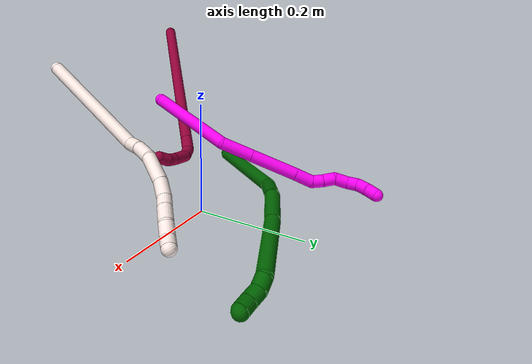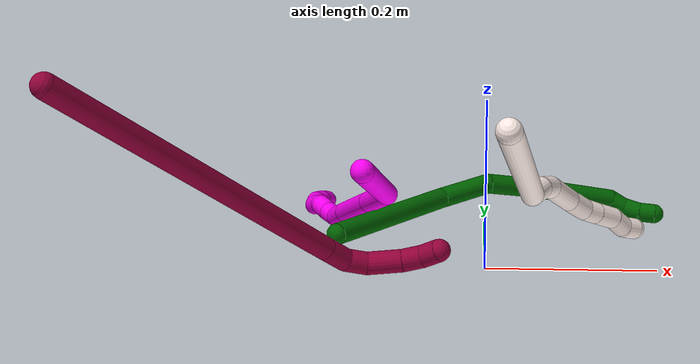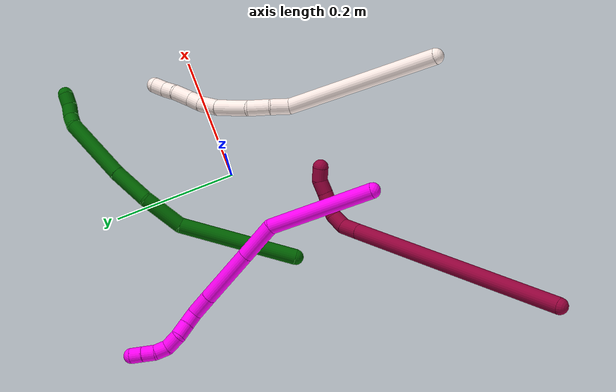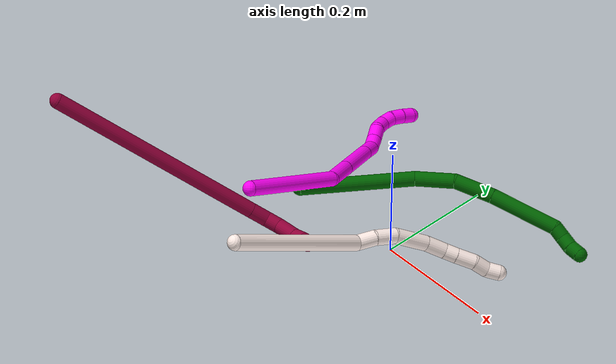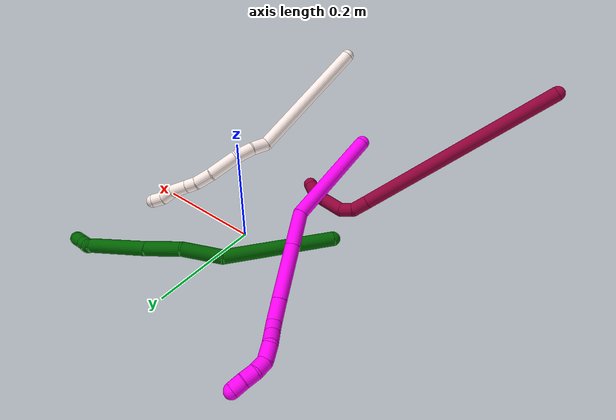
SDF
<sdf version="1.7">
 <world name="default">
  <model name="6">
   <static>0</static>
   <link name="6">
    <collision name="collision-cylinder-e_1_1_4">
     <pose>-0.006357 0.012702 -0.093792 -3.00698 -0.067062 0.923484</pose>
     <geometry><cylinder><radius>0.0125</radius><length>0.189724</length></cylinder></geometry>
     <surface>
      <friction><ode><mu>1.16</mu><mu2>1.16</mu2><slip1>0</slip1><slip2>0</slip2></ode></friction>
      <contact><ode><kp>1e+06</kp><kd>1</kd><max_vel>0</max_vel><min_depth>0.001</min_depth></ode></contact>
     </surface>
    </collision>
    <visual name="visual-cylinder-e_1_1_4">
     <pose>-0.006357 0.012702 -0.093792 -3.00698 -0.067062 0.923484</pose>
     <geometry><cylinder><radius>0.0125</radius><length>0.189724</length></cylinder></geometry>
     <material><ambient>0 0.392157 0.003922 1</ambient></material>
    </visual>
    <collision name="collision-cylinder-e_2_4_5">
     <pose>-0.009545 0.04176 -0.217629 -2.64308 0.092367 -0.359213</pose>
     <geometry><cylinder><radius>0.0125</radius><length>0.068706</length></cylinder></geometry>
     <surface>
      <friction><ode><mu>1.16</mu><mu2>1.16</mu2><slip1>0</slip1><slip2>0</slip2></ode></friction>
      <contact><ode><kp>1e+06</kp><kd>1</kd><max_vel>0</max_vel><min_depth>0.001</min_depth></ode></contact>
     </surface>
    </collision>
    <visual name="visual-cylinder-e_2_4_5">
     <pose>-0.009545 0.04176 -0.217629 -2.64308 0.092367 -0.359213</pose>
     <geometry><cylinder><radius>0.0125</radius><length>0.068706</length></cylinder></geometry>
     <material><ambient>0 0.392157 0.003922 1</ambient></material>
    </visual>
    <collision name="collision-cylinder-e_3_5_6">
     <pose>0.006302 0.067994 -0.275911 -2.80506 0.400838 -1.74873</pose>
     <geometry><cylinder><radius>0.0125</radius><length>0.064985</length></cylinder></geometry>
     <surface>
      <friction><ode><mu>1.16</mu><mu2>1.16</mu2><slip1>0</slip1><slip2>0</slip2></ode></friction>
      <contact><ode><kp>1e+06</kp><kd>1</kd><max_vel>0</max_vel><min_depth>0.001</min_depth></ode></contact>
     </surface>
    </collision>
    <visual name="visual-cylinder-e_3_5_6">
     <pose>0.006302 0.067994 -0.275911 -2.80506 0.400838 -1.74873</pose>
     <geometry><cylinder><radius>0.0125</radius><length>0.064985</length></cylinder></geometry>
     <material><ambient>0 0.392157 0.003922 1</ambient></material>
    </visual>
    <collision name="collision-cylinder-e_4_6_7">
     <pose>0.04568 0.096989 -0.350821 -2.75284 0.486899 -1.80117</pose>
     <geometry><cylinder><radius>0.0125</radius><length>0.114133</length></cylinder></geometry>
     <surface>
      <friction><ode><mu>1.16</mu><mu2>1.16</mu2><slip1>0</slip1><slip2>0</slip2></ode></friction>
      <contact><ode><kp>1e+06</kp><kd>1</kd><max_vel>0</max_vel><min_depth>0.001</min_depth></ode></contact>
     </surface>
    </collision>
    <visual name="visual-cylinder-e_4_6_7">
     <pose>0.04568 0.096989 -0.350821 -2.75284 0.486899 -1.80117</pose>
     <geometry><cylinder><radius>0.0125</radius><length>0.114133</length></cylinder></geometry>
     <material><ambient>0 0.392157 0.003922 1</ambient></material>
    </visual>
    <collision name="collision-cylinder-e_5_7_8">
     <pose>0.080681 0.11804 -0.403218 -2.81573 0.941417 -2.51665</pose>
     <geometry><cylinder><radius>0.0125</radius><length>0.020534</length></cylinder></geometry>
     <surface>
      <friction><ode><mu>1.16</mu><mu2>1.16</mu2><slip1>0</slip1><slip2>0</slip2></ode></friction>
      <contact><ode><kp>1e+06</kp><kd>1</kd><max_vel>0</max_vel><min_depth>0.001</min_depth></ode></contact>
     </surface>
    </collision>
    <visual name="visual-cylinder-e_5_7_8">
     <pose>0.080681 0.11804 -0.403218 -2.81573 0.941417 -2.51665</pose>
     <geometry><cylinder><radius>0.0125</radius><length>0.020534</length></cylinder></geometry>
     <material><ambient>0 0.392157 0.003922 1</ambient></material>
    </visual>
    <collision name="collision-cylinder-e_6_8_9">
     <pose>0.097077 0.125285 -0.413455 -2.27507 0.860168 -1.56243</pose>
     <geometry><cylinder><radius>0.0125</radius><length>0.021364</length></cylinder></geometry>
     <surface>
      <friction><ode><mu>1.16</mu><mu2>1.16</mu2><slip1>0</slip1><slip2>0</slip2></ode></friction>
      <contact><ode><kp>1e+06</kp><kd>1</kd><max_vel>0</max_vel><min_depth>0.001</min_depth></ode></contact>
     </surface>
    </collision>
    <visual name="visual-cylinder-e_6_8_9">
     <pose>0.097077 0.125285 -0.413455 -2.27507 0.860168 -1.56243</pose>
     <geometry><cylinder><radius>0.0125</radius><length>0.021364</length></cylinder></geometry>
     <material><ambient>0 0.392157 0.003922 1</ambient></material>
    </visual>
    <collision name="collision-cylinder-e_7_9_2">
     <pose>0.111227 0.136721 -0.423574 -2.31207 0.629899 -1.27405</pose>
     <geometry><cylinder><radius>0.0125</radius><length>0.020555</length></cylinder></geometry>
     <surface>
      <friction><ode><mu>1.16</mu><mu2>1.16</mu2><slip1>0</slip1><slip2>0</slip2></ode></friction>
      <contact><ode><kp>1e+06</kp><kd>1</kd><max_vel>0</max_vel><min_depth>0.001</min_depth></ode></contact>
     </surface>
    </collision>
    <visual name="visual-cylinder-e_7_9_2">
     <pose>0.111227 0.136721 -0.423574 -2.31207 0.629899 -1.27405</pose>
     <geometry><cylinder><radius>0.0125</radius><length>0.020555</length></cylinder></geometry>
     <material><ambient>0 0.392157 0.003922 1</ambient></material>
    </visual>
    <collision name="collision-sphere-2">
     <pose>0.117281 0.142847 -0.429182 0 -0 0</pose>
     <geometry><sphere><radius>0.0125</radius></sphere></geometry>
     <surface>
      <friction><ode><mu>1.16</mu><mu2>1.16</mu2><slip1>0</slip1><slip2>0</slip2></ode></friction>
      <contact><ode><kp>1e+06</kp><kd>1</kd><max_vel>0</max_vel><min_depth>0.001</min_depth></ode></contact>
     </surface>
    </collision>
    <visual name="visual-sphere-2">
     <pose>0.117281 0.142847 -0.429182 0 -0 0</pose>
     <geometry><sphere><radius>0.0125</radius></sphere></geometry>
     <material><ambient>0 0.392157 0.003922 1</ambient></material>
    </visual>
    <collision name="collision-sphere-9">
     <pose>0.105173 0.130595 -0.417966 0 -0 0</pose>
     <geometry><sphere><radius>0.0125</radius></sphere></geometry>
     <surface>
      <friction><ode><mu>1.16</mu><mu2>1.16</mu2><slip1>0</slip1><slip2>0</slip2></ode></friction>
      <contact><ode><kp>1e+06</kp><kd>1</kd><max_vel>0</max_vel><min_depth>0.001</min_depth></ode></contact>
     </surface>
    </collision>
    <visual name="visual-sphere-9">
     <pose>0.105173 0.130595 -0.417966 0 -0 0</pose>
     <geometry><sphere><radius>0.0125</radius></sphere></geometry>
     <material><ambient>0 0.392157 0.003922 1</ambient></material>
    </visual>
    <collision name="collision-sphere-4">
     <pose>-0.012714 0.025405 -0.187585 0 -0 0</pose>
     <geometry><sphere><radius>0.0125</radius></sphere></geometry>
     <surface>
      <friction><ode><mu>1.16</mu><mu2>1.16</mu2><slip1>0</slip1><slip2>0</slip2></ode></friction>
      <contact><ode><kp>1e+06</kp><kd>1</kd><max_vel>0</max_vel><min_depth>0.001</min_depth></ode></contact>
     </surface>
    </collision>
    <visual name="visual-sphere-4">
     <pose>-0.012714 0.025405 -0.187585 0 -0 0</pose>
     <geometry><sphere><radius>0.0125</radius></sphere></geometry>
     <material><ambient>0 0.392157 0.003922 1</ambient></material>
    </visual>
    <collision name="collision-sphere-1">
     <geometry><sphere><radius>0.0125</radius></sphere></geometry>
     <surface>
      <friction><ode><mu>1.16</mu><mu2>1.16</mu2><slip1>0</slip1><slip2>0</slip2></ode></friction>
      <contact><ode><kp>1e+06</kp><kd>1</kd><max_vel>0</max_vel><min_depth>0.001</min_depth></ode></contact>
     </surface>
    </collision>
    <visual name="visual-sphere-1">
     <geometry><sphere><radius>0.0125</radius></sphere></geometry>
     <material><ambient>0 0.392157 0.003922 1</ambient></material>
    </visual>
    <collision name="collision-sphere-8">
     <pose>0.088981 0.119975 -0.408943 0 -0 0</pose>
     <geometry><sphere><radius>0.0125</radius></sphere></geometry>
     <surface>
      <friction><ode><mu>1.16</mu><mu2>1.16</mu2><slip1>0</slip1><slip2>0</slip2></ode></friction>
      <contact><ode><kp>1e+06</kp><kd>1</kd><max_vel>0</max_vel><min_depth>0.001</min_depth></ode></contact>
     </surface>
    </collision>
    <visual name="visual-sphere-8">
     <pose>0.088981 0.119975 -0.408943 0 -0 0</pose>
     <geometry><sphere><radius>0.0125</radius></sphere></geometry>
     <material><ambient>0 0.392157 0.003922 1</ambient></material>
    </visual>
    <collision name="collision-sphere-5">
     <pose>-0.006377 0.058115 -0.247672 0 -0 0</pose>
     <geometry><sphere><radius>0.0125</radius></sphere></geometry>
     <surface>
      <friction><ode><mu>1.16</mu><mu2>1.16</mu2><slip1>0</slip1><slip2>0</slip2></ode></friction>
      <contact><ode><kp>1e+06</kp><kd>1</kd><max_vel>0</max_vel><min_depth>0.001</min_depth></ode></contact>
     </surface>
    </collision>
    <visual name="visual-sphere-5">
     <pose>-0.006377 0.058115 -0.247672 0 -0 0</pose>
     <geometry><sphere><radius>0.0125</radius></sphere></geometry>
     <material><ambient>0 0.392157 0.003922 1</ambient></material>
    </visual>
    <collision name="collision-sphere-6">
     <pose>0.01898 0.077873 -0.30415 0 -0 0</pose>
     <geometry><sphere><radius>0.0125</radius></sphere></geometry>
     <surface>
      <friction><ode><mu>1.16</mu><mu2>1.16</mu2><slip1>0</slip1><slip2>0</slip2></ode></friction>
      <contact><ode><kp>1e+06</kp><kd>1</kd><max_vel>0</max_vel><min_depth>0.001</min_depth></ode></contact>
     </surface>
    </collision>
    <visual name="visual-sphere-6">
     <pose>0.01898 0.077873 -0.30415 0 -0 0</pose>
     <geometry><sphere><radius>0.0125</radius></sphere></geometry>
     <material><ambient>0 0.392157 0.003922 1</ambient></material>
    </visual>
    <collision name="collision-sphere-7">
     <pose>0.072381 0.116105 -0.397492 0 -0 0</pose>
     <geometry><sphere><radius>0.0125</radius></sphere></geometry>
     <surface>
      <friction><ode><mu>1.16</mu><mu2>1.16</mu2><slip1>0</slip1><slip2>0</slip2></ode></friction>
      <contact><ode><kp>1e+06</kp><kd>1</kd><max_vel>0</max_vel><min_depth>0.001</min_depth></ode></contact>
     </surface>
    </collision>
    <visual name="visual-sphere-7">
     <pose>0.072381 0.116105 -0.397492 0 -0 0</pose>
     <geometry><sphere><radius>0.0125</radius></sphere></geometry>
     <material><ambient>0 0.392157 0.003922 1</ambient></material>
    </visual>
    <inertial>
     <pose>0.019556 0.057356 -0.233073 0 -0 0</pose>
     <mass>0.5</mass>
     <inertia>
      <ixx>0.000666</ixx>
      <ixy>0</ixy>
      <ixz>0</ixz>
      <iyy>1.8e-05</iyy>
      <iyz>0</iyz>
      <izz>-0.000215</izz>
     </inertia>
    </inertial>
   </link>
   <pose>-0.167836 -0.046096 0.052711 1.39551 0.814323 -0.716896</pose>
  </model>
  <model name="8">
   <static>0</static>
   <link name="8">
    <collision name="collision-cylinder-e_1_1_4">
     <pose>0.004092 -0.000912 -0.181271 3.13656 0.022572 2.70301</pose>
     <geometry><cylinder><radius>0.0125</radius><length>0.36264</length></cylinder></geometry>
     <surface>
      <friction><ode><mu>1.16</mu><mu2>1.16</mu2><slip1>0</slip1><slip2>0</slip2></ode></friction>
      <contact><ode><kp>1e+06</kp><kd>1</kd><max_vel>0</max_vel><min_depth>0.001</min_depth></ode></contact>
     </surface>
    </collision>
    <visual name="visual-cylinder-e_1_1_4">
     <pose>0.004092 -0.000912 -0.181271 3.13656 0.022572 2.70301</pose>
     <geometry><cylinder><radius>0.0125</radius><length>0.36264</length></cylinder></geometry>
     <material><ambient>0.584314 0 0.227451 1</ambient></material>
    </visual>
    <collision name="collision-cylinder-e_2_4_5">
     <pose>0.00865 -0.001886 -0.377871 3.13752 0.030337 2.87436</pose>
     <geometry><cylinder><radius>0.0125</radius><length>0.03067</length></cylinder></geometry>
     <surface>
      <friction><ode><mu>1.16</mu><mu2>1.16</mu2><slip1>0</slip1><slip2>0</slip2></ode></friction>
      <contact><ode><kp>1e+06</kp><kd>1</kd><max_vel>0</max_vel><min_depth>0.001</min_depth></ode></contact>
     </surface>
    </collision>
    <visual name="visual-cylinder-e_2_4_5">
     <pose>0.00865 -0.001886 -0.377871 3.13752 0.030337 2.87436</pose>
     <geometry><cylinder><radius>0.0125</radius><length>0.03067</length></cylinder></geometry>
     <material><ambient>0.584314 0 0.227451 1</ambient></material>
    </visual>
    <collision name="collision-cylinder-e_3_5_6">
     <pose>0.015085 -0.003271 -0.403637 3.01562 0.516112 2.67247</pose>
     <geometry><cylinder><radius>0.0125</radius><length>0.024194</length></cylinder></geometry>
     <surface>
      <friction><ode><mu>1.16</mu><mu2>1.16</mu2><slip1>0</slip1><slip2>0</slip2></ode></friction>
      <contact><ode><kp>1e+06</kp><kd>1</kd><max_vel>0</max_vel><min_depth>0.001</min_depth></ode></contact>
     </surface>
    </collision>
    <visual name="visual-cylinder-e_3_5_6">
     <pose>0.015085 -0.003271 -0.403637 3.01562 0.516112 2.67247</pose>
     <geometry><cylinder><radius>0.0125</radius><length>0.024194</length></cylinder></geometry>
     <material><ambient>0.584314 0 0.227451 1</ambient></material>
    </visual>
    <collision name="collision-cylinder-e_4_6_7">
     <pose>0.036967 -0.009075 -0.423847 2.71155 0.976586 2.36145</pose>
     <geometry><cylinder><radius>0.0125</radius><length>0.038407</length></cylinder></geometry>
     <surface>
      <friction><ode><mu>1.16</mu><mu2>1.16</mu2><slip1>0</slip1><slip2>0</slip2></ode></friction>
      <contact><ode><kp>1e+06</kp><kd>1</kd><max_vel>0</max_vel><min_depth>0.001</min_depth></ode></contact>
     </surface>
    </collision>
    <visual name="visual-cylinder-e_4_6_7">
     <pose>0.036967 -0.009075 -0.423847 2.71155 0.976586 2.36145</pose>
     <geometry><cylinder><radius>0.0125</radius><length>0.038407</length></cylinder></geometry>
     <material><ambient>0.584314 0 0.227451 1</ambient></material>
    </visual>
    <collision name="collision-cylinder-e_5_7_8">
     <pose>0.062705 -0.014911 -0.438737 2.88308 1.07662 2.71292</pose>
     <geometry><cylinder><radius>0.0125</radius><length>0.022324</length></cylinder></geometry>
     <surface>
      <friction><ode><mu>1.16</mu><mu2>1.16</mu2><slip1>0</slip1><slip2>0</slip2></ode></friction>
      <contact><ode><kp>1e+06</kp><kd>1</kd><max_vel>0</max_vel><min_depth>0.001</min_depth></ode></contact>
     </surface>
    </collision>
    <visual name="visual-cylinder-e_5_7_8">
     <pose>0.062705 -0.014911 -0.438737 2.88308 1.07662 2.71292</pose>
     <geometry><cylinder><radius>0.0125</radius><length>0.022324</length></cylinder></geometry>
     <material><ambient>0.584314 0 0.227451 1</ambient></material>
    </visual>
    <collision name="collision-cylinder-e_6_8_2">
     <pose>0.082875 -0.019646 -0.443914 1.58793 1.25476 1.27109</pose>
     <geometry><cylinder><radius>0.0125</radius><length>0.021765</length></cylinder></geometry>
     <surface>
      <friction><ode><mu>1.16</mu><mu2>1.16</mu2><slip1>0</slip1><slip2>0</slip2></ode></friction>
      <contact><ode><kp>1e+06</kp><kd>1</kd><max_vel>0</max_vel><min_depth>0.001</min_depth></ode></contact>
     </surface>
    </collision>
    <visual name="visual-cylinder-e_6_8_2">
     <pose>0.082875 -0.019646 -0.443914 1.58793 1.25476 1.27109</pose>
     <geometry><cylinder><radius>0.0125</radius><length>0.021765</length></cylinder></geometry>
     <material><ambient>0.584314 0 0.227451 1</ambient></material>
    </visual>
    <collision name="collision-sphere-2">
     <pose>0.093219 -0.023028 -0.443972 0 -0 0</pose>
     <geometry><sphere><radius>0.0125</radius></sphere></geometry>
     <surface>
      <friction><ode><mu>1.16</mu><mu2>1.16</mu2><slip1>0</slip1><slip2>0</slip2></ode></friction>
      <contact><ode><kp>1e+06</kp><kd>1</kd><max_vel>0</max_vel><min_depth>0.001</min_depth></ode></contact>
     </surface>
    </collision>
    <visual name="visual-sphere-2">
     <pose>0.093219 -0.023028 -0.443972 0 -0 0</pose>
     <geometry><sphere><radius>0.0125</radius></sphere></geometry>
     <material><ambient>0.584314 0 0.227451 1</ambient></material>
    </visual>
    <collision name="collision-sphere-4">
     <pose>0.008185 -0.001824 -0.362543 0 -0 0</pose>
     <geometry><sphere><radius>0.0125</radius></sphere></geometry>
     <surface>
      <friction><ode><mu>1.16</mu><mu2>1.16</mu2><slip1>0</slip1><slip2>0</slip2></ode></friction>
      <contact><ode><kp>1e+06</kp><kd>1</kd><max_vel>0</max_vel><min_depth>0.001</min_depth></ode></contact>
     </surface>
    </collision>
    <visual name="visual-sphere-4">
     <pose>0.008185 -0.001824 -0.362543 0 -0 0</pose>
     <geometry><sphere><radius>0.0125</radius></sphere></geometry>
     <material><ambient>0.584314 0 0.227451 1</ambient></material>
    </visual>
    <collision name="collision-sphere-1">
     <geometry><sphere><radius>0.0125</radius></sphere></geometry>
     <surface>
      <friction><ode><mu>1.16</mu><mu2>1.16</mu2><slip1>0</slip1><slip2>0</slip2></ode></friction>
      <contact><ode><kp>1e+06</kp><kd>1</kd><max_vel>0</max_vel><min_depth>0.001</min_depth></ode></contact>
     </surface>
    </collision>
    <visual name="visual-sphere-1">
     <geometry><sphere><radius>0.0125</radius></sphere></geometry>
     <material><ambient>0.584314 0 0.227451 1</ambient></material>
    </visual>
    <collision name="collision-sphere-8">
     <pose>0.072532 -0.016264 -0.443856 0 -0 0</pose>
     <geometry><sphere><radius>0.0125</radius></sphere></geometry>
     <surface>
      <friction><ode><mu>1.16</mu><mu2>1.16</mu2><slip1>0</slip1><slip2>0</slip2></ode></friction>
      <contact><ode><kp>1e+06</kp><kd>1</kd><max_vel>0</max_vel><min_depth>0.001</min_depth></ode></contact>
     </surface>
    </collision>
    <visual name="visual-sphere-8">
     <pose>0.072532 -0.016264 -0.443856 0 -0 0</pose>
     <geometry><sphere><radius>0.0125</radius></sphere></geometry>
     <material><ambient>0.584314 0 0.227451 1</ambient></material>
    </visual>
    <collision name="collision-sphere-5">
     <pose>0.009115 -0.001949 -0.393199 0 -0 0</pose>
     <geometry><sphere><radius>0.0125</radius></sphere></geometry>
     <surface>
      <friction><ode><mu>1.16</mu><mu2>1.16</mu2><slip1>0</slip1><slip2>0</slip2></ode></friction>
      <contact><ode><kp>1e+06</kp><kd>1</kd><max_vel>0</max_vel><min_depth>0.001</min_depth></ode></contact>
     </surface>
    </collision>
    <visual name="visual-sphere-5">
     <pose>0.009115 -0.001949 -0.393199 0 -0 0</pose>
     <geometry><sphere><radius>0.0125</radius></sphere></geometry>
     <material><ambient>0.584314 0 0.227451 1</ambient></material>
    </visual>
    <collision name="collision-sphere-6">
     <pose>0.021055 -0.004593 -0.414074 0 -0 0</pose>
     <geometry><sphere><radius>0.0125</radius></sphere></geometry>
     <surface>
      <friction><ode><mu>1.16</mu><mu2>1.16</mu2><slip1>0</slip1><slip2>0</slip2></ode></friction>
      <contact><ode><kp>1e+06</kp><kd>1</kd><max_vel>0</max_vel><min_depth>0.001</min_depth></ode></contact>
     </surface>
    </collision>
    <visual name="visual-sphere-6">
     <pose>0.021055 -0.004593 -0.414074 0 -0 0</pose>
     <geometry><sphere><radius>0.0125</radius></sphere></geometry>
     <material><ambient>0.584314 0 0.227451 1</ambient></material>
    </visual>
    <collision name="collision-sphere-7">
     <pose>0.052879 -0.013557 -0.433619 0 -0 0</pose>
     <geometry><sphere><radius>0.0125</radius></sphere></geometry>
     <surface>
      <friction><ode><mu>1.16</mu><mu2>1.16</mu2><slip1>0</slip1><slip2>0</slip2></ode></friction>
      <contact><ode><kp>1e+06</kp><kd>1</kd><max_vel>0</max_vel><min_depth>0.001</min_depth></ode></contact>
     </surface>
    </collision>
    <visual name="visual-sphere-7">
     <pose>0.052879 -0.013557 -0.433619 0 -0 0</pose>
     <geometry><sphere><radius>0.0125</radius></sphere></geometry>
     <material><ambient>0.584314 0 0.227451 1</ambient></material>
    </visual>
    <inertial>
     <pose>0.013475 -0.003153 -0.245652 0 -0 0</pose>
     <mass>0.5</mass>
     <inertia>
      <ixx>-0.001913</ixx>
      <ixy>0</ixy>
      <ixz>0</ixz>
      <iyy>0.005322</iyy>
      <iyz>0</iyz>
      <izz>-0.000112</izz>
     </inertia>
    </inertial>
   </link>
   <pose>-0.385385 -0.356578 0.273445 0.73174 -0.676576 -0.185244</pose>
  </model>
  <model name="10">
   <static>0</static>
   <link name="10">
    <collision name="collision-cylinder-e_1_1_4">
     <pose>0.006644 0.062932 0.060218 -0.807429 0.076132 -0.032535</pose>
     <geometry><cylinder><radius>0.0125</radius><length>0.174709</length></cylinder></geometry>
     <surface>
      <friction><ode><mu>1.16</mu><mu2>1.16</mu2><slip1>0</slip1><slip2>0</slip2></ode></friction>
      <contact><ode><kp>1e+06</kp><kd>1</kd><max_vel>0</max_vel><min_depth>0.001</min_depth></ode></contact>
     </surface>
    </collision>
    <visual name="visual-cylinder-e_1_1_4">
     <pose>0.006644 0.062932 0.060218 -0.807429 0.076132 -0.032535</pose>
     <geometry><cylinder><radius>0.0125</radius><length>0.174709</length></cylinder></geometry>
     <material><ambient>1 0 0.964706 1</ambient></material>
    </visual>
    <collision name="collision-cylinder-e_2_4_5">
     <pose>0.012212 0.155922 0.129415 -1.28053 -0.034291 0.025547</pose>
     <geometry><cylinder><radius>0.0125</radius><length>0.062779</length></cylinder></geometry>
     <surface>
      <friction><ode><mu>1.16</mu><mu2>1.16</mu2><slip1>0</slip1><slip2>0</slip2></ode></friction>
      <contact><ode><kp>1e+06</kp><kd>1</kd><max_vel>0</max_vel><min_depth>0.001</min_depth></ode></contact>
     </surface>
    </collision>
    <visual name="visual-cylinder-e_2_4_5">
     <pose>0.012212 0.155922 0.129415 -1.28053 -0.034291 0.025547</pose>
     <geometry><cylinder><radius>0.0125</radius><length>0.062779</length></cylinder></geometry>
     <material><ambient>1 0 0.964706 1</ambient></material>
    </visual>
    <collision name="collision-cylinder-e_3_5_6">
     <pose>0.009605 0.2307 0.15175 -1.28056 -0.032796 0.024433</pose>
     <geometry><cylinder><radius>0.0125</radius><length>0.093393</length></cylinder></geometry>
     <surface>
      <friction><ode><mu>1.16</mu><mu2>1.16</mu2><slip1>0</slip1><slip2>0</slip2></ode></friction>
      <contact><ode><kp>1e+06</kp><kd>1</kd><max_vel>0</max_vel><min_depth>0.001</min_depth></ode></contact>
     </surface>
    </collision>
    <visual name="visual-cylinder-e_3_5_6">
     <pose>0.009605 0.2307 0.15175 -1.28056 -0.032796 0.024433</pose>
     <geometry><cylinder><radius>0.0125</radius><length>0.093393</length></cylinder></geometry>
     <material><ambient>1 0 0.964706 1</ambient></material>
    </visual>
    <collision name="collision-cylinder-e_4_6_7">
     <pose>0.007978 0.293068 0.170229 -1.28829 -0.005197 0.003903</pose>
     <geometry><cylinder><radius>0.0125</radius><length>0.036754</length></cylinder></geometry>
     <surface>
      <friction><ode><mu>1.16</mu><mu2>1.16</mu2><slip1>0</slip1><slip2>0</slip2></ode></friction>
      <contact><ode><kp>1e+06</kp><kd>1</kd><max_vel>0</max_vel><min_depth>0.001</min_depth></ode></contact>
     </surface>
    </collision>
    <visual name="visual-cylinder-e_4_6_7">
     <pose>0.007978 0.293068 0.170229 -1.28829 -0.005197 0.003903</pose>
     <geometry><cylinder><radius>0.0125</radius><length>0.036754</length></cylinder></geometry>
     <material><ambient>1 0 0.964706 1</ambient></material>
    </visual>
    <collision name="collision-cylinder-e_5_7_8">
     <pose>0.002632 0.319827 0.177225 -1.36797 -0.513847 0.422018</pose>
     <geometry><cylinder><radius>0.0125</radius><length>0.021362</length></cylinder></geometry>
     <surface>
      <friction><ode><mu>1.16</mu><mu2>1.16</mu2><slip1>0</slip1><slip2>0</slip2></ode></friction>
      <contact><ode><kp>1e+06</kp><kd>1</kd><max_vel>0</max_vel><min_depth>0.001</min_depth></ode></contact>
     </surface>
    </collision>
    <visual name="visual-cylinder-e_5_7_8">
     <pose>0.002632 0.319827 0.177225 -1.36797 -0.513847 0.422018</pose>
     <geometry><cylinder><radius>0.0125</radius><length>0.021362</length></cylinder></geometry>
     <material><ambient>1 0 0.964706 1</ambient></material>
    </visual>
    <collision name="collision-cylinder-e_6_8_9">
     <pose>-0.009324 0.338286 0.180872 -1.38331 -0.613983 0.513467</pose>
     <geometry><cylinder><radius>0.0125</radius><length>0.023281</length></cylinder></geometry>
     <surface>
      <friction><ode><mu>1.16</mu><mu2>1.16</mu2><slip1>0</slip1><slip2>0</slip2></ode></friction>
      <contact><ode><kp>1e+06</kp><kd>1</kd><max_vel>0</max_vel><min_depth>0.001</min_depth></ode></contact>
     </surface>
    </collision>
    <visual name="visual-cylinder-e_6_8_9">
     <pose>-0.009324 0.338286 0.180872 -1.38331 -0.613983 0.513467</pose>
     <geometry><cylinder><radius>0.0125</radius><length>0.023281</length></cylinder></geometry>
     <material><ambient>1 0 0.964706 1</ambient></material>
    </visual>
    <collision name="collision-cylinder-e_7_9_10">
     <pose>-0.01784 0.359967 0.186802 -1.24573 -0.138106 0.09927</pose>
     <geometry><cylinder><radius>0.0125</radius><length>0.026279</length></cylinder></geometry>
     <surface>
      <friction><ode><mu>1.16</mu><mu2>1.16</mu2><slip1>0</slip1><slip2>0</slip2></ode></friction>
      <contact><ode><kp>1e+06</kp><kd>1</kd><max_vel>0</max_vel><min_depth>0.001</min_depth></ode></contact>
     </surface>
    </collision>
    <visual name="visual-cylinder-e_7_9_10">
     <pose>-0.01784 0.359967 0.186802 -1.24573 -0.138106 0.09927</pose>
     <geometry><cylinder><radius>0.0125</radius><length>0.026279</length></cylinder></geometry>
     <material><ambient>1 0 0.964706 1</ambient></material>
    </visual>
    <collision name="collision-cylinder-e_8_10_11">
     <pose>-0.022852 0.379277 0.197848 -0.7917 -0.315816 0.132895</pose>
     <geometry><cylinder><radius>0.0125</radius><length>0.020629</length></cylinder></geometry>
     <surface>
      <friction><ode><mu>1.16</mu><mu2>1.16</mu2><slip1>0</slip1><slip2>0</slip2></ode></friction>
      <contact><ode><kp>1e+06</kp><kd>1</kd><max_vel>0</max_vel><min_depth>0.001</min_depth></ode></contact>
     </surface>
    </collision>
    <visual name="visual-cylinder-e_8_10_11">
     <pose>-0.022852 0.379277 0.197848 -0.7917 -0.315816 0.132895</pose>
     <geometry><cylinder><radius>0.0125</radius><length>0.020629</length></cylinder></geometry>
     <material><ambient>1 0 0.964706 1</ambient></material>
    </visual>
    <collision name="collision-cylinder-e_9_11_12">
     <pose>-0.026855 0.391987 0.213361 -0.586806 -0.076997 0.023273</pose>
     <geometry><cylinder><radius>0.0125</radius><length>0.020774</length></cylinder></geometry>
     <surface>
      <friction><ode><mu>1.16</mu><mu2>1.16</mu2><slip1>0</slip1><slip2>0</slip2></ode></friction>
      <contact><ode><kp>1e+06</kp><kd>1</kd><max_vel>0</max_vel><min_depth>0.001</min_depth></ode></contact>
     </surface>
    </collision>
    <visual name="visual-cylinder-e_9_11_12">
     <pose>-0.026855 0.391987 0.213361 -0.586806 -0.076997 0.023273</pose>
     <geometry><cylinder><radius>0.0125</radius><length>0.020774</length></cylinder></geometry>
     <material><ambient>1 0 0.964706 1</ambient></material>
    </visual>
    <collision name="collision-cylinder-e_10_12_2">
     <pose>-0.027449 0.40357 0.230118 -0.623365 0.020438 -0.006585</pose>
     <geometry><cylinder><radius>0.0125</radius><length>0.020039</length></cylinder></geometry>
     <surface>
      <friction><ode><mu>1.16</mu><mu2>1.16</mu2><slip1>0</slip1><slip2>0</slip2></ode></friction>
      <contact><ode><kp>1e+06</kp><kd>1</kd><max_vel>0</max_vel><min_depth>0.001</min_depth></ode></contact>
     </surface>
    </collision>
    <visual name="visual-cylinder-e_10_12_2">
     <pose>-0.027449 0.40357 0.230118 -0.623365 0.020438 -0.006585</pose>
     <geometry><cylinder><radius>0.0125</radius><length>0.020039</length></cylinder></geometry>
     <material><ambient>1 0 0.964706 1</ambient></material>
    </visual>
    <collision name="collision-sphere-2">
     <pose>-0.027244 0.409417 0.238251 0 -0 0</pose>
     <geometry><sphere><radius>0.0125</radius></sphere></geometry>
     <surface>
      <friction><ode><mu>1.16</mu><mu2>1.16</mu2><slip1>0</slip1><slip2>0</slip2></ode></friction>
      <contact><ode><kp>1e+06</kp><kd>1</kd><max_vel>0</max_vel><min_depth>0.001</min_depth></ode></contact>
     </surface>
    </collision>
    <visual name="visual-sphere-2">
     <pose>-0.027244 0.409417 0.238251 0 -0 0</pose>
     <geometry><sphere><radius>0.0125</radius></sphere></geometry>
     <material><ambient>1 0 0.964706 1</ambient></material>
    </visual>
    <collision name="collision-sphere-12">
     <pose>-0.027654 0.397722 0.221984 0 -0 0</pose>
     <geometry><sphere><radius>0.0125</radius></sphere></geometry>
     <surface>
      <friction><ode><mu>1.16</mu><mu2>1.16</mu2><slip1>0</slip1><slip2>0</slip2></ode></friction>
      <contact><ode><kp>1e+06</kp><kd>1</kd><max_vel>0</max_vel><min_depth>0.001</min_depth></ode></contact>
     </surface>
    </collision>
    <visual name="visual-sphere-12">
     <pose>-0.027654 0.397722 0.221984 0 -0 0</pose>
     <geometry><sphere><radius>0.0125</radius></sphere></geometry>
     <material><ambient>1 0 0.964706 1</ambient></material>
    </visual>
    <collision name="collision-sphere-11">
     <pose>-0.026056 0.386253 0.204737 0 -0 0</pose>
     <geometry><sphere><radius>0.0125</radius></sphere></geometry>
     <surface>
      <friction><ode><mu>1.16</mu><mu2>1.16</mu2><slip1>0</slip1><slip2>0</slip2></ode></friction>
      <contact><ode><kp>1e+06</kp><kd>1</kd><max_vel>0</max_vel><min_depth>0.001</min_depth></ode></contact>
     </surface>
    </collision>
    <visual name="visual-sphere-11">
     <pose>-0.026056 0.386253 0.204737 0 -0 0</pose>
     <geometry><sphere><radius>0.0125</radius></sphere></geometry>
     <material><ambient>1 0 0.964706 1</ambient></material>
    </visual>
    <collision name="collision-sphere-10">
     <pose>-0.019649 0.3723 0.190959 0 -0 0</pose>
     <geometry><sphere><radius>0.0125</radius></sphere></geometry>
     <surface>
      <friction><ode><mu>1.16</mu><mu2>1.16</mu2><slip1>0</slip1><slip2>0</slip2></ode></friction>
      <contact><ode><kp>1e+06</kp><kd>1</kd><max_vel>0</max_vel><min_depth>0.001</min_depth></ode></contact>
     </surface>
    </collision>
    <visual name="visual-sphere-10">
     <pose>-0.019649 0.3723 0.190959 0 -0 0</pose>
     <geometry><sphere><radius>0.0125</radius></sphere></geometry>
     <material><ambient>1 0 0.964706 1</ambient></material>
    </visual>
    <collision name="collision-sphere-9">
     <pose>-0.016031 0.347634 0.182646 0 -0 0</pose>
     <geometry><sphere><radius>0.0125</radius></sphere></geometry>
     <surface>
      <friction><ode><mu>1.16</mu><mu2>1.16</mu2><slip1>0</slip1><slip2>0</slip2></ode></friction>
      <contact><ode><kp>1e+06</kp><kd>1</kd><max_vel>0</max_vel><min_depth>0.001</min_depth></ode></contact>
     </surface>
    </collision>
    <visual name="visual-sphere-9">
     <pose>-0.016031 0.347634 0.182646 0 -0 0</pose>
     <geometry><sphere><radius>0.0125</radius></sphere></geometry>
     <material><ambient>1 0 0.964706 1</ambient></material>
    </visual>
    <collision name="collision-sphere-4">
     <pose>0.013288 0.125864 0.120437 0 -0 0</pose>
     <geometry><sphere><radius>0.0125</radius></sphere></geometry>
     <surface>
      <friction><ode><mu>1.16</mu><mu2>1.16</mu2><slip1>0</slip1><slip2>0</slip2></ode></friction>
      <contact><ode><kp>1e+06</kp><kd>1</kd><max_vel>0</max_vel><min_depth>0.001</min_depth></ode></contact>
     </surface>
    </collision>
    <visual name="visual-sphere-4">
     <pose>0.013288 0.125864 0.120437 0 -0 0</pose>
     <geometry><sphere><radius>0.0125</radius></sphere></geometry>
     <material><ambient>1 0 0.964706 1</ambient></material>
    </visual>
    <collision name="collision-sphere-1">
     <geometry><sphere><radius>0.0125</radius></sphere></geometry>
     <surface>
      <friction><ode><mu>1.16</mu><mu2>1.16</mu2><slip1>0</slip1><slip2>0</slip2></ode></friction>
      <contact><ode><kp>1e+06</kp><kd>1</kd><max_vel>0</max_vel><min_depth>0.001</min_depth></ode></contact>
     </surface>
    </collision>
    <visual name="visual-sphere-1">
     <geometry><sphere><radius>0.0125</radius></sphere></geometry>
     <material><ambient>1 0 0.964706 1</ambient></material>
    </visual>
    <collision name="collision-sphere-8">
     <pose>-0.002618 0.328939 0.179099 0 -0 0</pose>
     <geometry><sphere><radius>0.0125</radius></sphere></geometry>
     <surface>
      <friction><ode><mu>1.16</mu><mu2>1.16</mu2><slip1>0</slip1><slip2>0</slip2></ode></friction>
      <contact><ode><kp>1e+06</kp><kd>1</kd><max_vel>0</max_vel><min_depth>0.001</min_depth></ode></contact>
     </surface>
    </collision>
    <visual name="visual-sphere-8">
     <pose>-0.002618 0.328939 0.179099 0 -0 0</pose>
     <geometry><sphere><radius>0.0125</radius></sphere></geometry>
     <material><ambient>1 0 0.964706 1</ambient></material>
    </visual>
    <collision name="collision-sphere-5">
     <pose>0.011136 0.185981 0.138394 0 -0 0</pose>
     <geometry><sphere><radius>0.0125</radius></sphere></geometry>
     <surface>
      <friction><ode><mu>1.16</mu><mu2>1.16</mu2><slip1>0</slip1><slip2>0</slip2></ode></friction>
      <contact><ode><kp>1e+06</kp><kd>1</kd><max_vel>0</max_vel><min_depth>0.001</min_depth></ode></contact>
     </surface>
    </collision>
    <visual name="visual-sphere-5">
     <pose>0.011136 0.185981 0.138394 0 -0 0</pose>
     <geometry><sphere><radius>0.0125</radius></sphere></geometry>
     <material><ambient>1 0 0.964706 1</ambient></material>
    </visual>
    <collision name="collision-sphere-6">
     <pose>0.008073 0.27542 0.165106 0 -0 0</pose>
     <geometry><sphere><radius>0.0125</radius></sphere></geometry>
     <surface>
      <friction><ode><mu>1.16</mu><mu2>1.16</mu2><slip1>0</slip1><slip2>0</slip2></ode></friction>
      <contact><ode><kp>1e+06</kp><kd>1</kd><max_vel>0</max_vel><min_depth>0.001</min_depth></ode></contact>
     </surface>
    </collision>
    <visual name="visual-sphere-6">
     <pose>0.008073 0.27542 0.165106 0 -0 0</pose>
     <geometry><sphere><radius>0.0125</radius></sphere></geometry>
     <material><ambient>1 0 0.964706 1</ambient></material>
    </visual>
    <collision name="collision-sphere-7">
     <pose>0.007882 0.310716 0.175352 0 -0 0</pose>
     <geometry><sphere><radius>0.0125</radius></sphere></geometry>
     <surface>
      <friction><ode><mu>1.16</mu><mu2>1.16</mu2><slip1>0</slip1><slip2>0</slip2></ode></friction>
      <contact><ode><kp>1e+06</kp><kd>1</kd><max_vel>0</max_vel><min_depth>0.001</min_depth></ode></contact>
     </surface>
    </collision>
    <visual name="visual-sphere-7">
     <pose>0.007882 0.310716 0.175352 0 -0 0</pose>
     <geometry><sphere><radius>0.0125</radius></sphere></geometry>
     <material><ambient>1 0 0.964706 1</ambient></material>
    </visual>
    <inertial>
     <pose>0.001817 0.202646 0.130211 0 -0 0</pose>
     <mass>0.5</mass>
     <inertia>
      <ixx>0.000547</ixx>
      <ixy>0</ixy>
      <ixz>0</ixz>
      <iyy>0.000369</iyy>
      <iyz>0</iyz>
      <izz>-0.000439</izz>
     </inertia>
    </inertial>
   </link>
   <pose>-0.125686 -0.186889 0.160076 -1.58803 1.14121 -0.830566</pose>
  </model>
  <model name="11">
   <static>0</static>
   <link name="11">
    <collision name="collision-cylinder-e_1_1_4">
     <pose>-0.002987 0.045765 -0.114638 -2.76176 -0.024196 0.125708</pose>
     <geometry><cylinder><radius>0.0125</radius><length>0.246944</length></cylinder></geometry>
     <surface>
      <friction><ode><mu>1.16</mu><mu2>1.16</mu2><slip1>0</slip1><slip2>0</slip2></ode></friction>
      <contact><ode><kp>1e+06</kp><kd>1</kd><max_vel>0</max_vel><min_depth>0.001</min_depth></ode></contact>
     </surface>
    </collision>
    <visual name="visual-cylinder-e_1_1_4">
     <pose>-0.002987 0.045765 -0.114638 -2.76176 -0.024196 0.125708</pose>
     <geometry><cylinder><radius>0.0125</radius><length>0.246944</length></cylinder></geometry>
     <material><ambient>1 0.933333 0.909804 1</ambient></material>
    </visual>
    <collision name="collision-cylinder-e_2_4_5">
     <pose>-0.003202 0.102896 -0.239326 -2.29484 0.180758 -0.396924</pose>
     <geometry><cylinder><radius>0.0125</radius><length>0.030844</length></cylinder></geometry>
     <surface>
      <friction><ode><mu>1.16</mu><mu2>1.16</mu2><slip1>0</slip1><slip2>0</slip2></ode></friction>
      <contact><ode><kp>1e+06</kp><kd>1</kd><max_vel>0</max_vel><min_depth>0.001</min_depth></ode></contact>
     </surface>
    </collision>
    <visual name="visual-cylinder-e_2_4_5">
     <pose>-0.003202 0.102896 -0.239326 -2.29484 0.180758 -0.396924</pose>
     <geometry><cylinder><radius>0.0125</radius><length>0.030844</length></cylinder></geometry>
     <material><ambient>1 0.933333 0.909804 1</ambient></material>
    </visual>
    <collision name="collision-cylinder-e_3_5_6">
     <pose>0.002889 0.124496 -0.263136 -2.5021 0.191105 -0.563526</pose>
     <geometry><cylinder><radius>0.0125</radius><length>0.034937</length></cylinder></geometry>
     <surface>
      <friction><ode><mu>1.16</mu><mu2>1.16</mu2><slip1>0</slip1><slip2>0</slip2></ode></friction>
      <contact><ode><kp>1e+06</kp><kd>1</kd><max_vel>0</max_vel><min_depth>0.001</min_depth></ode></contact>
     </surface>
    </collision>
    <visual name="visual-cylinder-e_3_5_6">
     <pose>0.002889 0.124496 -0.263136 -2.5021 0.191105 -0.563526</pose>
     <geometry><cylinder><radius>0.0125</radius><length>0.034937</length></cylinder></geometry>
     <material><ambient>1 0.933333 0.909804 1</ambient></material>
    </visual>
    <collision name="collision-cylinder-e_4_6_7">
     <pose>0.014472 0.143631 -0.302266 -2.80419 0.298278 -1.44576</pose>
     <geometry><cylinder><radius>0.0125</radius><length>0.056253</length></cylinder></geometry>
     <surface>
      <friction><ode><mu>1.16</mu><mu2>1.16</mu2><slip1>0</slip1><slip2>0</slip2></ode></friction>
      <contact><ode><kp>1e+06</kp><kd>1</kd><max_vel>0</max_vel><min_depth>0.001</min_depth></ode></contact>
     </surface>
    </collision>
    <visual name="visual-cylinder-e_4_6_7">
     <pose>0.014472 0.143631 -0.302266 -2.80419 0.298278 -1.44576</pose>
     <geometry><cylinder><radius>0.0125</radius><length>0.056253</length></cylinder></geometry>
     <material><ambient>1 0.933333 0.909804 1</ambient></material>
    </visual>
    <collision name="collision-cylinder-e_5_7_8">
     <pose>0.030238 0.156368 -0.342228 -2.88449 0.461274 -2.13515</pose>
     <geometry><cylinder><radius>0.0125</radius><length>0.033701</length></cylinder></geometry>
     <surface>
      <friction><ode><mu>1.16</mu><mu2>1.16</mu2><slip1>0</slip1><slip2>0</slip2></ode></friction>
      <contact><ode><kp>1e+06</kp><kd>1</kd><max_vel>0</max_vel><min_depth>0.001</min_depth></ode></contact>
     </surface>
    </collision>
    <visual name="visual-cylinder-e_5_7_8">
     <pose>0.030238 0.156368 -0.342228 -2.88449 0.461274 -2.13515</pose>
     <geometry><cylinder><radius>0.0125</radius><length>0.033701</length></cylinder></geometry>
     <material><ambient>1 0.933333 0.909804 1</ambient></material>
    </visual>
    <collision name="collision-cylinder-e_6_8_9">
     <pose>0.044109 0.163047 -0.36459 -2.79082 0.656331 -2.18182</pose>
     <geometry><cylinder><radius>0.0125</radius><length>0.020883</length></cylinder></geometry>
     <surface>
      <friction><ode><mu>1.16</mu><mu2>1.16</mu2><slip1>0</slip1><slip2>0</slip2></ode></friction>
      <contact><ode><kp>1e+06</kp><kd>1</kd><max_vel>0</max_vel><min_depth>0.001</min_depth></ode></contact>
     </surface>
    </collision>
    <visual name="visual-cylinder-e_6_8_9">
     <pose>0.044109 0.163047 -0.36459 -2.79082 0.656331 -2.18182</pose>
     <geometry><cylinder><radius>0.0125</radius><length>0.020883</length></cylinder></geometry>
     <material><ambient>1 0.933333 0.909804 1</ambient></material>
    </visual>
    <collision name="collision-cylinder-e_7_9_10">
     <pose>0.059617 0.170581 -0.383996 -2.75837 0.629341 -2.06664</pose>
     <geometry><cylinder><radius>0.0125</radius><length>0.031042</length></cylinder></geometry>
     <surface>
      <friction><ode><mu>1.16</mu><mu2>1.16</mu2><slip1>0</slip1><slip2>0</slip2></ode></friction>
      <contact><ode><kp>1e+06</kp><kd>1</kd><max_vel>0</max_vel><min_depth>0.001</min_depth></ode></contact>
     </surface>
    </collision>
    <visual name="visual-cylinder-e_7_9_10">
     <pose>0.059617 0.170581 -0.383996 -2.75837 0.629341 -2.06664</pose>
     <geometry><cylinder><radius>0.0125</radius><length>0.031042</length></cylinder></geometry>
     <material><ambient>1 0.933333 0.909804 1</ambient></material>
    </visual>
    <collision name="collision-cylinder-e_8_10_11">
     <pose>0.074428 0.176183 -0.406262 -3.05613 0.488931 -2.8021</pose>
     <geometry><cylinder><radius>0.0125</radius><length>0.024166</length></cylinder></geometry>
     <surface>
      <friction><ode><mu>1.16</mu><mu2>1.16</mu2><slip1>0</slip1><slip2>0</slip2></ode></friction>
      <contact><ode><kp>1e+06</kp><kd>1</kd><max_vel>0</max_vel><min_depth>0.001</min_depth></ode></contact>
     </surface>
    </collision>
    <visual name="visual-cylinder-e_8_10_11">
     <pose>0.074428 0.176183 -0.406262 -3.05613 0.488931 -2.8021</pose>
     <geometry><cylinder><radius>0.0125</radius><length>0.024166</length></cylinder></geometry>
     <material><ambient>1 0.933333 0.909804 1</ambient></material>
    </visual>
    <collision name="collision-cylinder-e_9_11_2">
     <pose>0.08629 0.181186 -0.424483 -2.64721 0.622264 -1.81086</pose>
     <geometry><cylinder><radius>0.0125</radius><length>0.021231</length></cylinder></geometry>
     <surface>
      <friction><ode><mu>1.16</mu><mu2>1.16</mu2><slip1>0</slip1><slip2>0</slip2></ode></friction>
      <contact><ode><kp>1e+06</kp><kd>1</kd><max_vel>0</max_vel><min_depth>0.001</min_depth></ode></contact>
     </surface>
    </collision>
    <visual name="visual-cylinder-e_9_11_2">
     <pose>0.08629 0.181186 -0.424483 -2.64721 0.622264 -1.81086</pose>
     <geometry><cylinder><radius>0.0125</radius><length>0.021231</length></cylinder></geometry>
     <material><ambient>1 0.933333 0.909804 1</ambient></material>
    </visual>
    <collision name="collision-sphere-2">
     <pose>0.092478 0.185279 -0.432076 0 -0 0</pose>
     <geometry><sphere><radius>0.0125</radius></sphere></geometry>
     <surface>
      <friction><ode><mu>1.16</mu><mu2>1.16</mu2><slip1>0</slip1><slip2>0</slip2></ode></friction>
      <contact><ode><kp>1e+06</kp><kd>1</kd><max_vel>0</max_vel><min_depth>0.001</min_depth></ode></contact>
     </surface>
    </collision>
    <visual name="visual-sphere-2">
     <pose>0.092478 0.185279 -0.432076 0 -0 0</pose>
     <geometry><sphere><radius>0.0125</radius></sphere></geometry>
     <material><ambient>1 0.933333 0.909804 1</ambient></material>
    </visual>
    <collision name="collision-sphere-11">
     <pose>0.080103 0.177094 -0.41689 0 -0 0</pose>
     <geometry><sphere><radius>0.0125</radius></sphere></geometry>
     <surface>
      <friction><ode><mu>1.16</mu><mu2>1.16</mu2><slip1>0</slip1><slip2>0</slip2></ode></friction>
      <contact><ode><kp>1e+06</kp><kd>1</kd><max_vel>0</max_vel><min_depth>0.001</min_depth></ode></contact>
     </surface>
    </collision>
    <visual name="visual-sphere-11">
     <pose>0.080103 0.177094 -0.41689 0 -0 0</pose>
     <geometry><sphere><radius>0.0125</radius></sphere></geometry>
     <material><ambient>1 0.933333 0.909804 1</ambient></material>
    </visual>
    <collision name="collision-sphere-10">
     <pose>0.068753 0.175273 -0.395633 0 -0 0</pose>
     <geometry><sphere><radius>0.0125</radius></sphere></geometry>
     <surface>
      <friction><ode><mu>1.16</mu><mu2>1.16</mu2><slip1>0</slip1><slip2>0</slip2></ode></friction>
      <contact><ode><kp>1e+06</kp><kd>1</kd><max_vel>0</max_vel><min_depth>0.001</min_depth></ode></contact>
     </surface>
    </collision>
    <visual name="visual-sphere-10">
     <pose>0.068753 0.175273 -0.395633 0 -0 0</pose>
     <geometry><sphere><radius>0.0125</radius></sphere></geometry>
     <material><ambient>1 0.933333 0.909804 1</ambient></material>
    </visual>
    <collision name="collision-sphere-9">
     <pose>0.050481 0.165889 -0.372359 0 -0 0</pose>
     <geometry><sphere><radius>0.0125</radius></sphere></geometry>
     <surface>
      <friction><ode><mu>1.16</mu><mu2>1.16</mu2><slip1>0</slip1><slip2>0</slip2></ode></friction>
      <contact><ode><kp>1e+06</kp><kd>1</kd><max_vel>0</max_vel><min_depth>0.001</min_depth></ode></contact>
     </surface>
    </collision>
    <visual name="visual-sphere-9">
     <pose>0.050481 0.165889 -0.372359 0 -0 0</pose>
     <geometry><sphere><radius>0.0125</radius></sphere></geometry>
     <material><ambient>1 0.933333 0.909804 1</ambient></material>
    </visual>
    <collision name="collision-sphere-4">
     <pose>-0.005974 0.091531 -0.229276 0 -0 0</pose>
     <geometry><sphere><radius>0.0125</radius></sphere></geometry>
     <surface>
      <friction><ode><mu>1.16</mu><mu2>1.16</mu2><slip1>0</slip1><slip2>0</slip2></ode></friction>
      <contact><ode><kp>1e+06</kp><kd>1</kd><max_vel>0</max_vel><min_depth>0.001</min_depth></ode></contact>
     </surface>
    </collision>
    <visual name="visual-sphere-4">
     <pose>-0.005974 0.091531 -0.229276 0 -0 0</pose>
     <geometry><sphere><radius>0.0125</radius></sphere></geometry>
     <material><ambient>1 0.933333 0.909804 1</ambient></material>
    </visual>
    <collision name="collision-sphere-1">
     <geometry><sphere><radius>0.0125</radius></sphere></geometry>
     <surface>
      <friction><ode><mu>1.16</mu><mu2>1.16</mu2><slip1>0</slip1><slip2>0</slip2></ode></friction>
      <contact><ode><kp>1e+06</kp><kd>1</kd><max_vel>0</max_vel><min_depth>0.001</min_depth></ode></contact>
     </surface>
    </collision>
    <visual name="visual-sphere-1">
     <geometry><sphere><radius>0.0125</radius></sphere></geometry>
     <material><ambient>1 0.933333 0.909804 1</ambient></material>
    </visual>
    <collision name="collision-sphere-8">
     <pose>0.037738 0.160204 -0.356822 0 -0 0</pose>
     <geometry><sphere><radius>0.0125</radius></sphere></geometry>
     <surface>
      <friction><ode><mu>1.16</mu><mu2>1.16</mu2><slip1>0</slip1><slip2>0</slip2></ode></friction>
      <contact><ode><kp>1e+06</kp><kd>1</kd><max_vel>0</max_vel><min_depth>0.001</min_depth></ode></contact>
     </surface>
    </collision>
    <visual name="visual-sphere-8">
     <pose>0.037738 0.160204 -0.356822 0 -0 0</pose>
     <geometry><sphere><radius>0.0125</radius></sphere></geometry>
     <material><ambient>1 0.933333 0.909804 1</ambient></material>
    </visual>
    <collision name="collision-sphere-5">
     <pose>-0.000429 0.114261 -0.249375 0 -0 0</pose>
     <geometry><sphere><radius>0.0125</radius></sphere></geometry>
     <surface>
      <friction><ode><mu>1.16</mu><mu2>1.16</mu2><slip1>0</slip1><slip2>0</slip2></ode></friction>
      <contact><ode><kp>1e+06</kp><kd>1</kd><max_vel>0</max_vel><min_depth>0.001</min_depth></ode></contact>
     </surface>
    </collision>
    <visual name="visual-sphere-5">
     <pose>-0.000429 0.114261 -0.249375 0 -0 0</pose>
     <geometry><sphere><radius>0.0125</radius></sphere></geometry>
     <material><ambient>1 0.933333 0.909804 1</ambient></material>
    </visual>
    <collision name="collision-sphere-6">
     <pose>0.006207 0.134731 -0.276898 0 -0 0</pose>
     <geometry><sphere><radius>0.0125</radius></sphere></geometry>
     <surface>
      <friction><ode><mu>1.16</mu><mu2>1.16</mu2><slip1>0</slip1><slip2>0</slip2></ode></friction>
      <contact><ode><kp>1e+06</kp><kd>1</kd><max_vel>0</max_vel><min_depth>0.001</min_depth></ode></contact>
     </surface>
    </collision>
    <visual name="visual-sphere-6">
     <pose>0.006207 0.134731 -0.276898 0 -0 0</pose>
     <geometry><sphere><radius>0.0125</radius></sphere></geometry>
     <material><ambient>1 0.933333 0.909804 1</ambient></material>
    </visual>
    <collision name="collision-sphere-7">
     <pose>0.022738 0.152531 -0.327635 0 -0 0</pose>
     <geometry><sphere><radius>0.0125</radius></sphere></geometry>
     <surface>
      <friction><ode><mu>1.16</mu><mu2>1.16</mu2><slip1>0</slip1><slip2>0</slip2></ode></friction>
      <contact><ode><kp>1e+06</kp><kd>1</kd><max_vel>0</max_vel><min_depth>0.001</min_depth></ode></contact>
     </surface>
    </collision>
    <visual name="visual-sphere-7">
     <pose>0.022738 0.152531 -0.327635 0 -0 0</pose>
     <geometry><sphere><radius>0.0125</radius></sphere></geometry>
     <material><ambient>1 0.933333 0.909804 1</ambient></material>
    </visual>
    <inertial>
     <pose>0.015 0.097957 -0.223569 0 -0 0</pose>
     <mass>0.5</mass>
     <inertia>
      <ixx>0.001394</ixx>
      <ixy>0</ixy>
      <ixz>0</ixz>
      <iyy>-0.001016</iyy>
      <iyz>0</iyz>
      <izz>-0.0005</izz>
     </inertia>
    </inertial>
   </link>
   <pose>0.017007 -0.338985 0.233884 0.718533 -0.020008 -0.158958</pose>
  </model>
 </world>
</sdf>
